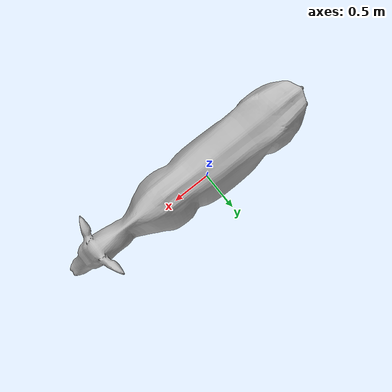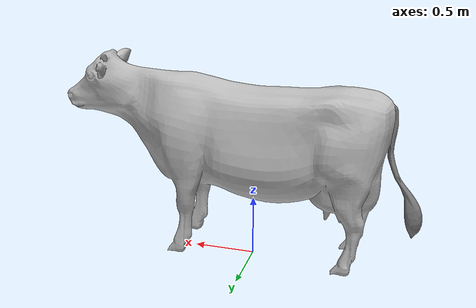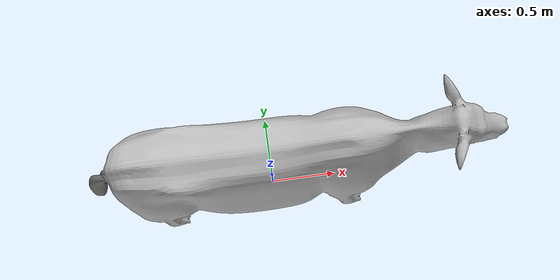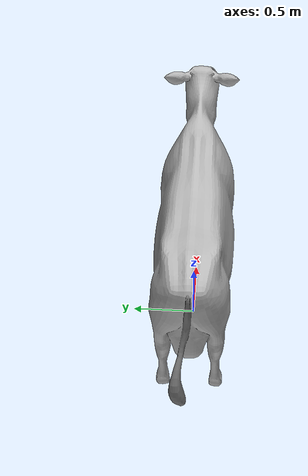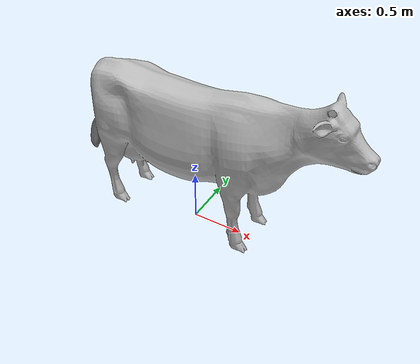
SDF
<sdf version="1.4">
 <world name="default">
  <include><uri>model://sun</uri></include>
  <model name="cow_0">
   <static>false</static>
   <link name="body">
    <gravity>0</gravity>
    <visual name="visual"><geometry><mesh><uri>model://cow20.dae</uri></mesh></geometry></visual>
   </link>
  </model>
  <model name="cow_1">
   <static>false</static>
   <link name="body">
    <gravity>0</gravity>
    <visual name="visual"><geometry><mesh><uri>model://cow20.dae</uri></mesh></geometry></visual>
   </link>
  </model>
  <model name="cow_2">
   <static>false</static>
   <link name="body">
    <gravity>0</gravity>
    <visual name="visual"><geometry><mesh><uri>model://cow20.dae</uri></mesh></geometry></visual>
   </link>
  </model>
  <model name="cow_3">
   <static>false</static>
   <link name="body">
    <gravity>0</gravity>
    <visual name="visual"><geometry><mesh><uri>model://cow20.dae</uri></mesh></geometry></visual>
   </link>
  </model>
  <model name="cow_4">
   <static>false</static>
   <link name="body">
    <gravity>0</gravity>
    <visual name="visual"><geometry><mesh><uri>model://cow20.dae</uri></mesh></geometry></visual>
   </link>
  </model>
  <scene><sky><clouds><speed>9</speed></clouds></sky></scene>
 </world>
</sdf>
